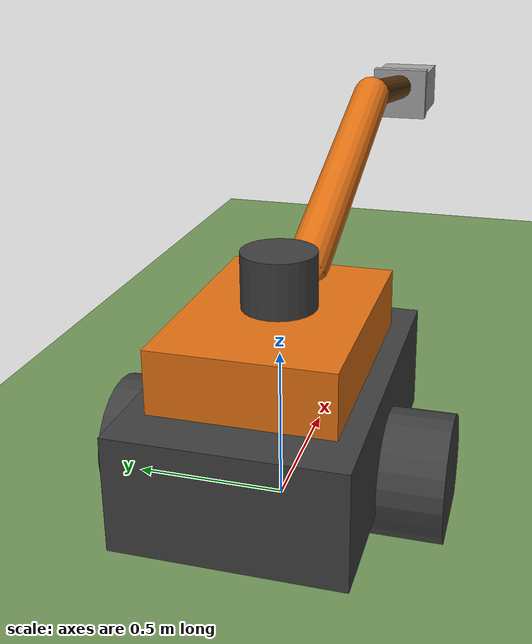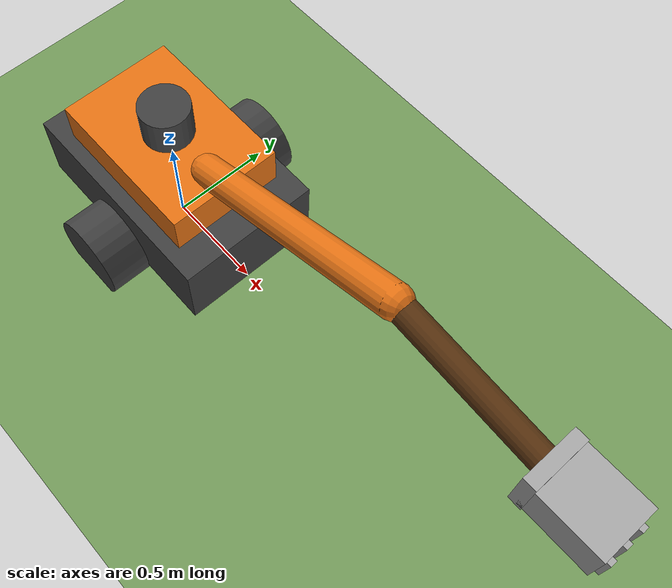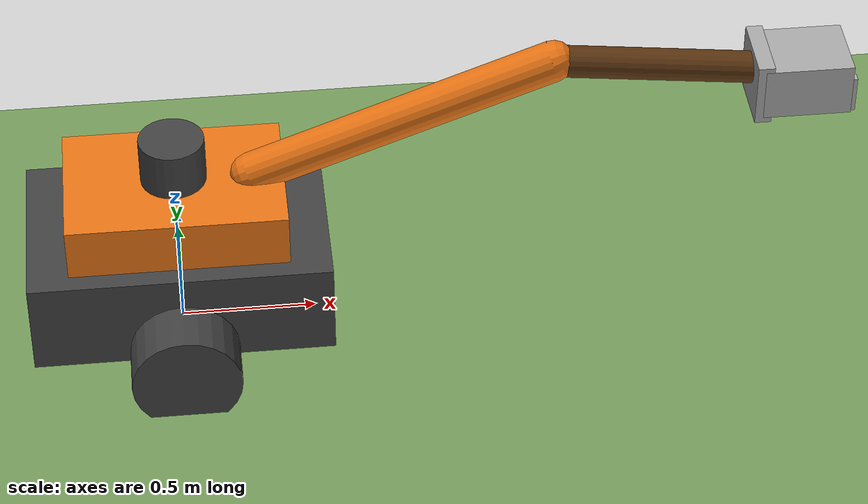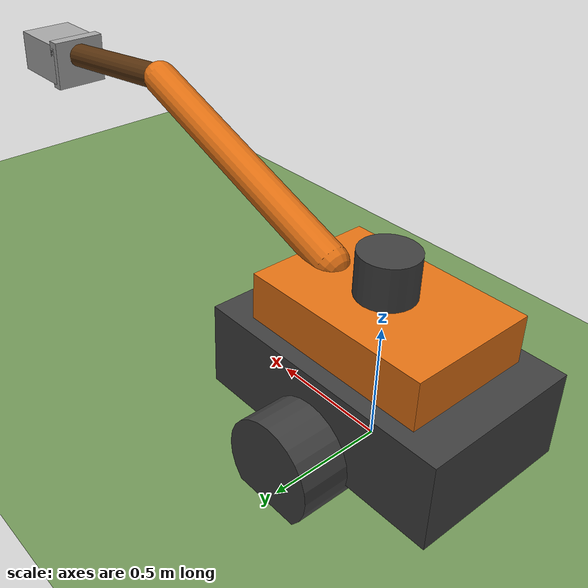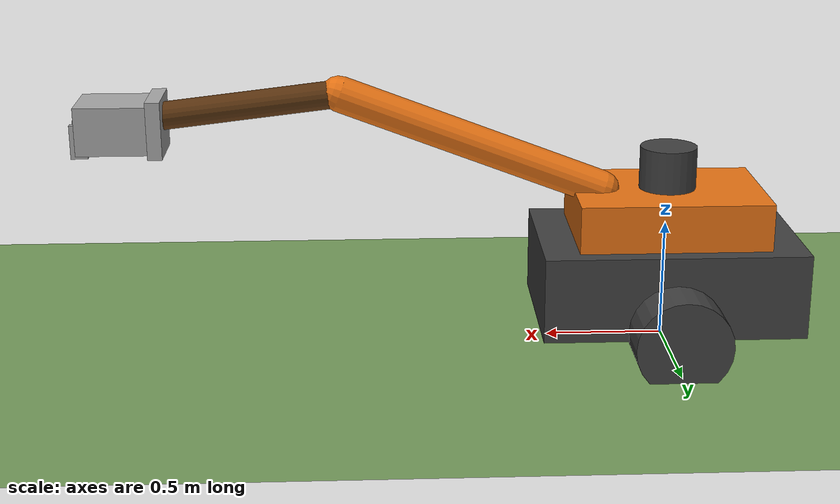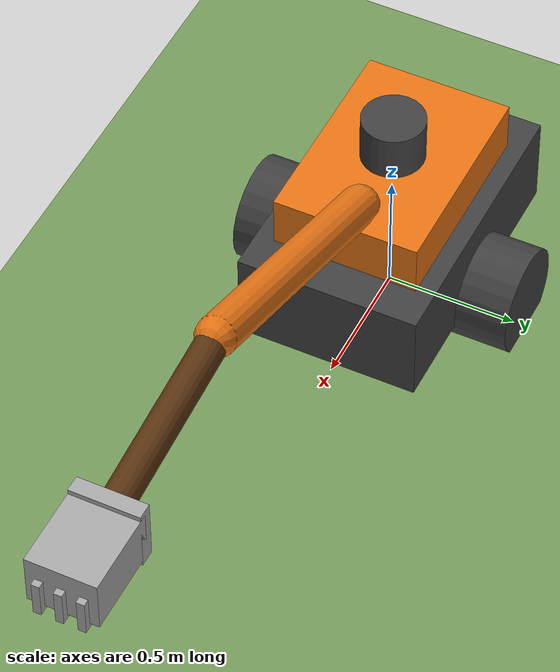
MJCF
<mujoco model="digger">
  <compiler angle="degree"/>
  <option gravity="0 0 -9.81" timestep="0.005"/>

  <asset>
    <material name="ground"    rgba="0.45 0.60 0.35 1"/>
    <material name="orange"    rgba="0.90 0.45 0.08 1"/>
    <material name="dark"      rgba="0.35 0.20 0.06 1"/>
    <material name="steel"     rgba="0.65 0.65 0.65 1"/>
    <material name="chassis"   rgba="0.25 0.25 0.25 1"/>
  </asset>

  <worldbody>
    <light pos="3 3 8" dir="-0.3 -0.3 -1" diffuse="1 1 1" specular="0.3 0.3 0.3"/>
    <light pos="-3 3 6" dir="0.3 -0.3 -1" diffuse="0.4 0.4 0.6"/>

    <!-- Ground plane -->
    <geom name="ground" type="plane" size="15 15 0.1" material="ground" condim="3"/>

    <!-- ── Fixed base / undercarriage ─────────────────────────── -->
    <body name="undercarriage" pos="0 0 0.28">
      <geom type="box"      size="0.55 0.35 0.18" material="chassis"/>
      <geom type="cylinder" size="0.20 0.55" pos="0 0 -0.14" euler="90 0 0" material="chassis"/>

      <!-- ── Turret (rotates around Z) ──────────────────────── -->
      <body name="turret" pos="0 0 0.20">
        <joint name="turret" type="hinge" axis="0 0 1"
               range="-150 150" damping="20" stiffness="0"/>
        <geom type="box"      size="0.40 0.28 0.18" material="orange"/>
        <geom type="cylinder" size="0.12 0.18" pos="0 0 0.18" material="chassis"/>

        <!-- ── Boom (pitches around Y) ─────────────────────── -->
        <body name="boom" pos="0.28 0 0.18">
          <joint name="boom" type="hinge" axis="0 1 0"
                 range="-5 75" damping="15" stiffness="0"/>
          <geom type="capsule" fromto="0 0 0  1.10 0 0.42"
                size="0.075" material="orange"/>

          <!-- ── Stick (pitches around Y) ────────────────── -->
          <body name="stick" pos="1.10 0 0.42">
            <joint name="stick" type="hinge" axis="0 1 0"
                   range="-125 5" damping="10" stiffness="0"/>
            <geom type="capsule" fromto="0 0 0  0.85 0 -0.10"
                  size="0.058" material="dark"/>

            <!-- ── Bucket (pitches around Y) ───────────── -->
            <body name="bucket" pos="0.85 0 -0.10">
              <joint name="bucket" type="hinge" axis="0 1 0"
                     range="-100 100" damping="5" stiffness="0"/>

              <!-- Main bucket shell -->
              <geom type="box" size="0.16 0.13 0.10"
                    pos="0.06 0 -0.02" material="steel"/>

              <!-- Back plate -->
              <geom type="box" size="0.03 0.13 0.12"
                    pos="-0.10 0 -0.02" material="steel"/>

              <!-- Three teeth -->
              <geom type="box" size="0.035 0.015 0.07"
                    pos="0.21 -0.08  -0.07" material="steel"/>
              <geom type="box" size="0.035 0.015 0.07"
                    pos="0.21  0.00  -0.07" material="steel"/>
              <geom type="box" size="0.035 0.015 0.07"
                    pos="0.21  0.08  -0.07" material="steel"/>
            </body>
          </body>
        </body>
      </body>
    </body>
  </worldbody>

  <actuator>
    <motor name="act_turret" joint="turret" gear="300"  ctrlrange="-1 1"/>
    <motor name="act_boom"   joint="boom"   gear="600"  ctrlrange="-1 1"/>
    <motor name="act_stick"  joint="stick"  gear="400"  ctrlrange="-1 1"/>
    <motor name="act_bucket" joint="bucket" gear="150"  ctrlrange="-1 1"/>
  </actuator>
</mujoco>
